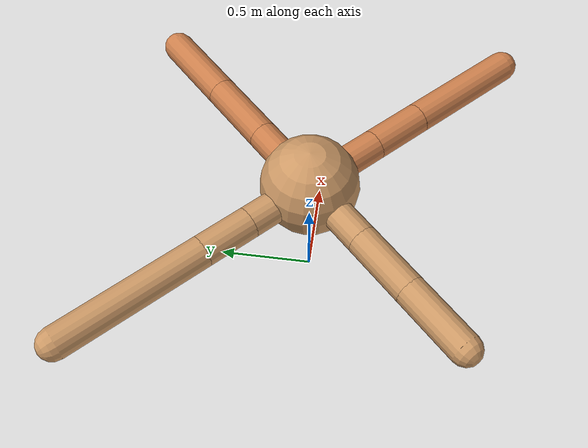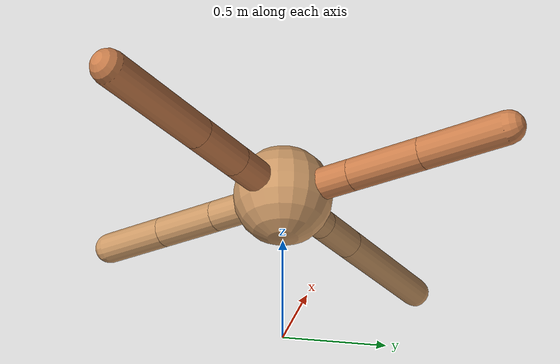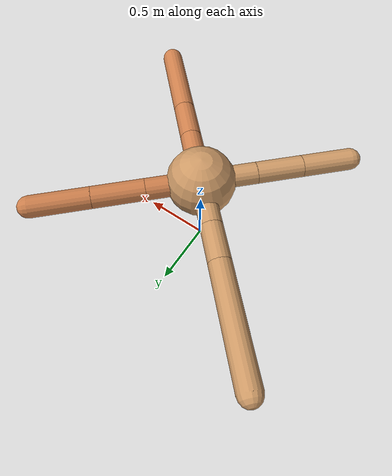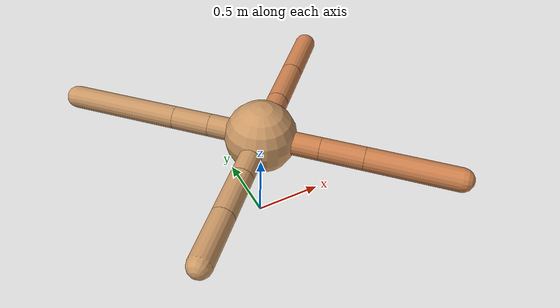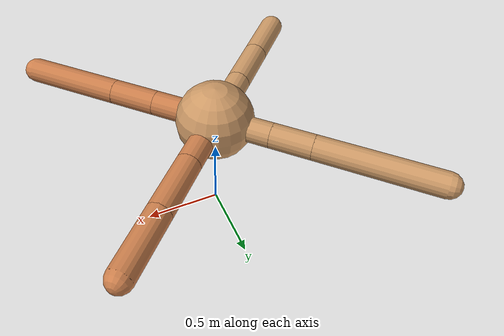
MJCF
<mujoco model="ant">
  <compiler angle="degree" coordinate="local" inertiafromgeom="true" />
  <option integrator="RK4" timestep="0.01" />
  <custom>
    <numeric data="0.0 0.0 0.55 1.0 0.0 0.0 0.0 0.0 1.0 0.0 -1.0 0.0 -1.0 0.0 1.0" name="init_qpos" />
  </custom>
  <default>
    <joint armature="1" damping="1" limited="true" />
    <geom conaffinity="0" condim="3" density="5.0" friction="1.5 0.1 0.1" margin="0.01" rgba="0.8 0.6 0.4 1" />
  </default>
  <worldbody>
    <body name="torso" pos="0 0 0.75">
      <geom name="torso_geom" pos="0 0 0" size="0.25" type="sphere" />

      <body name="front_left_leg" pos="0 0 0">
        <geom fromto="0.0 0.0 0.0 0.28122027697602253 0.28122027697602253 0.0" name="aux_1_geom" size="0.08" type="capsule" rgba=".8 .5 .3 1" />
        <body name="aux_1" pos="0.28122027697602253 0.28122027697602253 0.0">
          <joint axis="0 0 1" name="hip_1" pos="0.0 0.0 0.0" range="-40 40" type="hinge" />
          <geom fromto="0.0 0.0 0.0 0.2666849597823622 0.2666849597823622 0.0" name="left_leg_geom" size="0.08" type="capsule" rgba=".8 .5 .3 1" />
          <body pos="0.2666849597823622 0.2666849597823622 0.0" name="front_left_foot">
            <joint axis="-1 1 0" name="ankle_1" pos="0.0 0.0 0.0" range="30 100" type="hinge" />
            <geom fromto="0.0 0.0 0.0 0.3023115013733888 0.3023115013733888 0.0" name="left_ankle_geom" size="0.08" type="capsule" rgba=".8 .5 .3 1" />
          </body>
        </body>
      </body>
      <body name="front_right_leg" pos="0 0 0">
        <geom fromto="0.0 0.0 0.0 -0.2616042905859942 0.2616042905859942 0.0" name="aux_2_geom" size="0.08" type="capsule" />
        <body name="aux_2" pos="-0.2616042905859942 0.2616042905859942 0.0">
          <joint axis="0 0 1" name="hip_2" pos="0.0 0.0 0.0" range="-40 40" type="hinge" />
          <geom fromto="0.0 0.0 0.0 -0.1882631192962435 0.1882631192962435 0.0" name="right_leg_geom" size="0.08" type="capsule" />
          <body pos="-0.1882631192962435 0.1882631192962435 0.0" name="front_right_foot">
            <joint axis="1 1 0" name="ankle_2" pos="0.0 0.0 0.0" range="-100 -30" type="hinge" />
            <geom fromto="0.0 0.0 0.0 -0.5485548020045795 0.5485548020045795 0.0" name="right_ankle_geom" size="0.08" type="capsule" />
          </body>
        </body>
      </body>
      <body name="left_back_leg" pos="0 0 0">
        <geom fromto="0.0 0.0 0.0 -0.2853926380933704 -0.2853926380933704 0.0" name="aux_3_geom" size="0.08" type="capsule" />
        <body name="aux_3" pos="-0.2853926380933704 -0.2853926380933704 0.0">
          <joint axis="0 0 1" name="hip_3" pos="0.0 0.0 0.0" range="-40 40" type="hinge" />
          <geom fromto="0.0 0.0 0.0 -0.2398647096098382 -0.2398647096098382 0.0" name="back_leg_geom" size="0.08" type="capsule" />
          <body pos="-0.2398647096098382 -0.2398647096098382 0.0" name="left_back_foot">
            <joint axis="-1 1 0" name="ankle_3" pos="0.0 0.0 0.0" range="-100 -30" type="hinge" />
            <geom fromto="0.0 0.0 0.0 -0.2596368503708428 -0.2596368503708428 0.0" name="third_ankle_geom" size="0.08" type="capsule" />
          </body>
        </body>
      </body>
      <body name="right_back_leg" pos="0 0 0">
        <geom fromto="0.0 0.0 0.0 0.2932199529710426 -0.2932199529710426 0.0" name="aux_4_geom" size="0.08" type="capsule" rgba=".8 .5 .3 1" />
        <body name="aux_4" pos="0.2932199529710426 -0.2932199529710426 0.0">
          <joint axis="0 0 1" name="hip_4" pos="0.0 0.0 0.0" range="-40 40" type="hinge" />
          <geom fromto="0.0 0.0 0.0 0.20986762552231175 -0.20986762552231175 0.0" name="rightback_leg_geom" size="0.08" type="capsule" rgba=".8 .5 .3 1" />
          <body pos="0.20986762552231175 -0.20986762552231175 0.0" name="right_back_foot">
            <joint axis="1 1 0" name="ankle_4" pos="0.0 0.0 0.0" range="30 100" type="hinge" />
            <geom fromto="0.0 0.0 0.0 0.43726675075167587 -0.43726675075167587 0.0" name="fourth_ankle_geom" size="0.08" type="capsule" rgba=".8 .5 .3 1" />
          </body>
        </body>
      </body>
    </body>
  </worldbody>
  <actuator>
    <motor ctrllimited="true" ctrlrange="-1.0 1.0" joint="hip_4" gear="150" />
    <motor ctrllimited="true" ctrlrange="-1.0 1.0" joint="ankle_4" gear="150" />
    <motor ctrllimited="true" ctrlrange="-1.0 1.0" joint="hip_1" gear="150" />
    <motor ctrllimited="true" ctrlrange="-1.0 1.0" joint="ankle_1" gear="150" />
    <motor ctrllimited="true" ctrlrange="-1.0 1.0" joint="hip_2" gear="150" />
    <motor ctrllimited="true" ctrlrange="-1.0 1.0" joint="ankle_2" gear="150" />
    <motor ctrllimited="true" ctrlrange="-1.0 1.0" joint="hip_3" gear="150" />
    <motor ctrllimited="true" ctrlrange="-1.0 1.0" joint="ankle_3" gear="150" />
  </actuator>
</mujoco>
